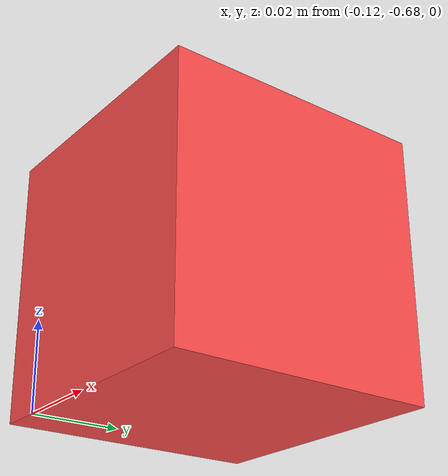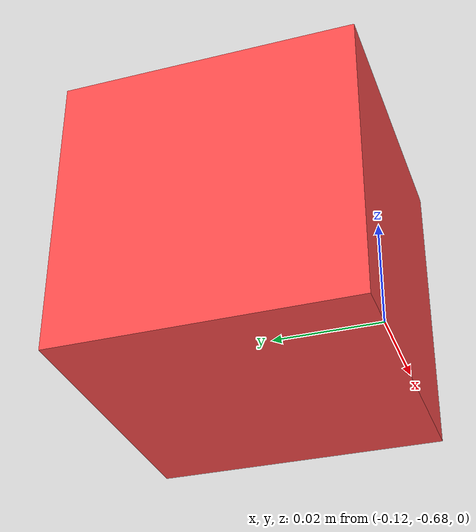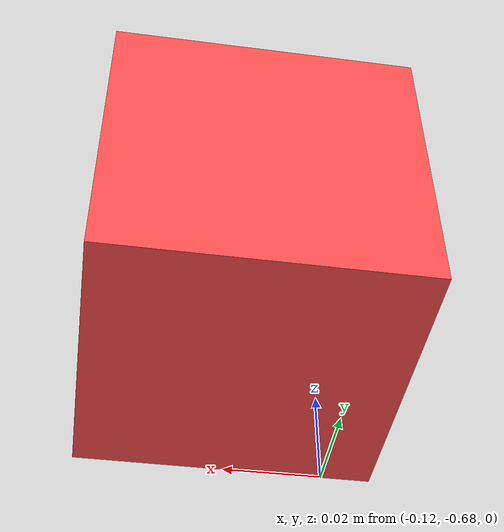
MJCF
<mujoco>
  <worldbody>
    <!-- Box to pick up -->
    <body name="box" pos="-0.1 -0.65 0.03" euler="0 0 0">
      <joint type="free"/>
      <geom name="box_geom" type="box" size="0.03 0.03 0.03" rgba="1 0.3 0.3 1" mass="0.1"/>
      <site name="box_site" pos="0 0 0" size="0.001"/>
    </body>
  </worldbody>
</mujoco>
